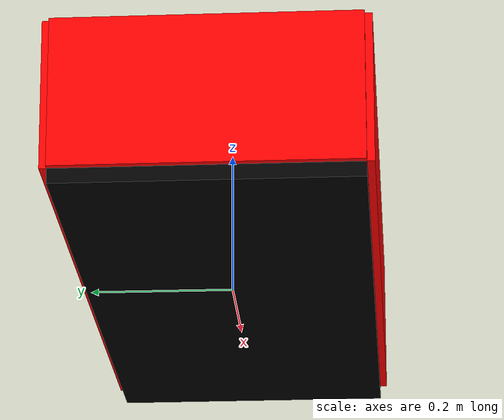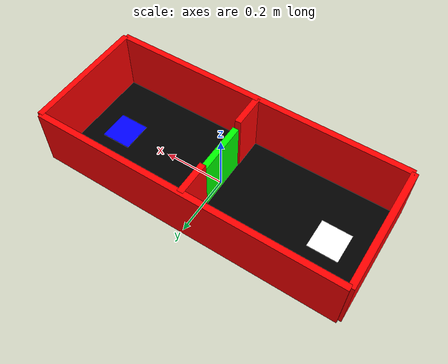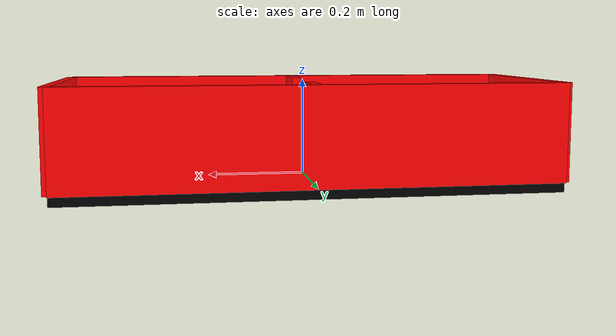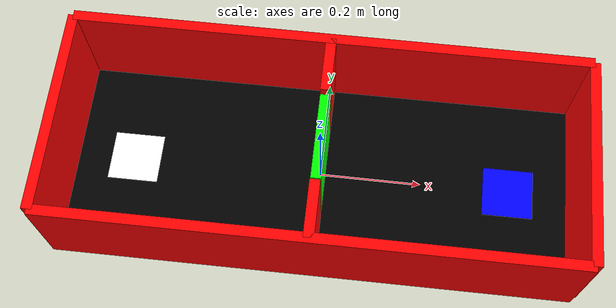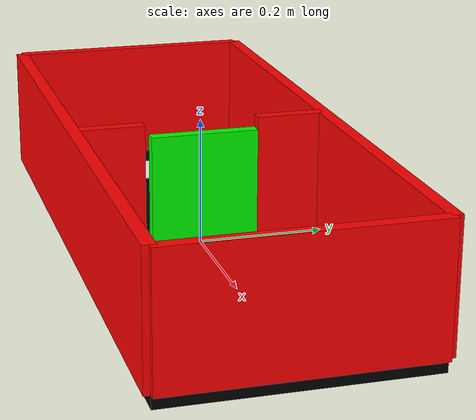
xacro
<?xml version="1.0"?>
<robot xmlns:xacro="http://www.ros.org/wiki/xacro" name="arena_OpenDoor">
	<xacro:property name="floor_x" value="1.0" />
	<xacro:property name="floor_y" value="0.4" />
	<xacro:property name="floor_friction" value="10.0" />

	<xacro:property name="wall_height" value="0.2" />
	<xacro:property name="wall_thick" value="0.02" />

	<xacro:property name="door_size" value="0.18" />
	<xacro:property name="door_friction" value="0.01" />
	<xacro:property name="clearance" value="0.005" />
	<xacro:property name="door_width" value="${door_size - (clearance * 2)}" />
	<xacro:property name="door_height" value="${door_size - clearance}" />

	<xacro:property name="divider_x" value="0.02" />
	<xacro:property name="divider_y_segment" value="${(floor_y - door_size) / 2}" />
	<xacro:property name="divider_offset_y" value="${(floor_y / 2) - (divider_y_segment / 2)}" />

	<material name="white">
		<color rgba="1 1 1 1"/>
	</material>
	<material name="black">
		<color rgba="0 0 0 1"/>
	</material>
	<material name="green">
		<color rgba="0 1 0 1"/>
	</material>
	<material name="blue">
		<color rgba="0 0 1 1"/>
	</material>
	<material name="red">
		<color rgba="1 0 0 1"/>
	</material>

	<link name="floor">
		<inertial>
			<mass value="0"/>
			<inertia ixx="0" ixy="0" ixz="0" iyy="0" iyz="0" izz="0"/>
		</inertial>
		<visual>
			<origin xyz="0 0 -0.01"/>
			<geometry>
				<box size="${floor_x} ${floor_y} 0.02"/>
			</geometry>
			<material name="black"/>
		</visual>
		<collision>
			<origin xyz="0 0 -0.01"/>
			<geometry>
				<box size="${floor_x} ${floor_y} 0.02"/>
			</geometry>
		</collision>
		<contact>
			<lateral_friction value="${floor_friction}"/>
		</contact>
	</link>

	<link name="start_pad">
		<inertial>
			<mass value="0.1"/>
			<inertia ixx="0.001" ixy="0" ixz="0" iyy="0.001" iyz="0" izz="0.001"/>
		</inertial>
		<visual>
			<geometry>
				<box size="0.1 0.1 0.001"/>
			</geometry>
			<material name="white"/>
		</visual>
	</link>
	<joint name="start_joint" type="fixed">
		<parent link="floor"/>
		<child link="start_pad"/>
		<origin xyz="${-(floor_x * 0.375)} 0 0.001"/>
	</joint>

	<link name="end_pad">
		<inertial>
			<mass value="0.1"/>
			<inertia ixx="0.001" ixy="0" ixz="0" iyy="0.001" iyz="0" izz="0.001"/>
		</inertial>
		<visual>
			<geometry>
				<box size="0.1 0.1 0.001"/>
			</geometry>
			<material name="blue"/>
		</visual>
	</link>
	<joint name="end_joint" type="fixed">
		<parent link="floor"/>
		<child link="end_pad"/>
		<origin xyz="${floor_x*0.375} 0 0.001"/>
	</joint>

	<link name="walls">
		<inertial>
			<mass value="0"/>
			<inertia ixx="0" ixy="0" ixz="0" iyy="0" iyz="0" izz="0"/>
		</inertial>
		<visual>
			<origin xyz="0 ${floor_y/2} ${wall_height/2}"/>
			<geometry>
				<box size="${floor_x} ${wall_thick} ${wall_height}"/>
			</geometry>
			<material name="red"/>
		</visual>
		<collision>
			<origin xyz="0 ${floor_y/2} ${wall_height/2}"/>
			<geometry>
				<box size="${floor_x} ${wall_thick} ${wall_height}"/>
			</geometry>
		</collision>
		<visual>
			<origin xyz="0 -${floor_y/2} ${wall_height/2}"/>
			<geometry>
				<box size="${floor_x} ${wall_thick} ${wall_height}"/>
			</geometry>
			<material name="red"/>
		</visual>
		<collision>
			<origin xyz="0 -${floor_y/2} ${wall_height/2}"/>
			<geometry>
				<box size="${floor_x} ${wall_thick} ${wall_height}"/>
			</geometry>
		</collision>
		<visual>
			<origin xyz="-${floor_x/2} 0 ${wall_height/2}"/>
			<geometry>
				<box size="${wall_thick} ${floor_y} ${wall_height}"/>
			</geometry>
			<material name="red"/>
		</visual>
		<collision>
			<origin xyz="-${floor_x/2} 0 ${wall_height/2}"/>
			<geometry>
				<box size="${wall_thick} ${floor_y} ${wall_height}"/>
			</geometry>
		</collision>
		<visual>
			<origin xyz="${floor_x/2} 0 ${wall_height/2}"/>
			<geometry>
				<box size="${wall_thick} ${floor_y} ${wall_height}"/>
			</geometry>
			<material name="red"/>
		</visual>
		<collision>
			<origin xyz="${floor_x/2} 0 ${wall_height/2}"/>
			<geometry>
				<box size="${wall_thick} ${floor_y} ${wall_height}"/>
			</geometry>
		</collision>
	</link>
	<joint name="walls_joint" type="fixed">
		<parent link="floor"/>
		<child link="walls"/>
	</joint>

	<link name="divider">
		<inertial>
			<mass value="0"/>
			<inertia ixx="0" ixy="0" ixz="0" iyy="0" iyz="0" izz="0"/>
		</inertial>

		<visual>
			<origin xyz="0 ${divider_offset_y} ${wall_height/2}"/>
			<geometry>
				<box size="${divider_x} ${divider_y_segment} ${wall_height}"/>
			</geometry>
			<material name="red"/>
		</visual>
		<collision>
			<origin xyz="0 ${divider_offset_y} ${wall_height/2}"/>
			<geometry>
				<box size="${divider_x} ${divider_y_segment} ${wall_height}"/>
			</geometry>
		</collision>

		<visual>
			<origin xyz="0 -${divider_offset_y} ${wall_height/2}"/>
			<geometry>
				<box size="${divider_x} ${divider_y_segment} ${wall_height}"/>
			</geometry>
			<material name="red"/>
		</visual>
		<collision>
			<origin xyz="0 -${divider_offset_y} ${wall_height/2}"/>
			<geometry>
				<box size="${divider_x} ${divider_y_segment} ${wall_height}"/>
			</geometry>
		</collision>
	</link>
	<joint name="divider_joint" type="fixed">
		<parent link="floor"/>
		<child link="divider"/>
	</joint>

	<link name="door_link">
		<inertial>
			<mass value="0.000000001"/>
			<origin xyz="0 -${door_width/2} ${door_height/2}"/>
			<inertia ixx="0.0001" ixy="0" ixz="0" iyy="0.0001" iyz="0" izz="0.0001"/>
		</inertial>
		<visual>
			<origin xyz="0 -${door_width/2} ${door_height/2 + clearance}"/>
			<geometry>
				<box size="0.02 ${door_width} ${door_height}"/>
			</geometry>
			<material name="green"/>
		</visual>
		<collision>
			<origin xyz="0 -${door_width/2} ${door_height/2 + clearance}"/>
			<geometry>
				<box size="0.02 ${door_width} ${door_height}"/>
			</geometry>
		</collision>
		<contact>
			<lateral_friction value="0.0"/>
		</contact>
	</link>

	<joint name="door_hinge" type="revolute">
		<parent link="floor"/>
		<child link="door_link"/>
		<origin xyz="0 ${(door_size/2)} 0" rpy="0 0 0"/>
		<axis xyz="0 0 1"/>
		<limit effort="100" lower="-1.57" upper="1.57" velocity="25"/>
		<dynamics damping="0.01" friction="${door_friction}"/>
	</joint>
</robot>
